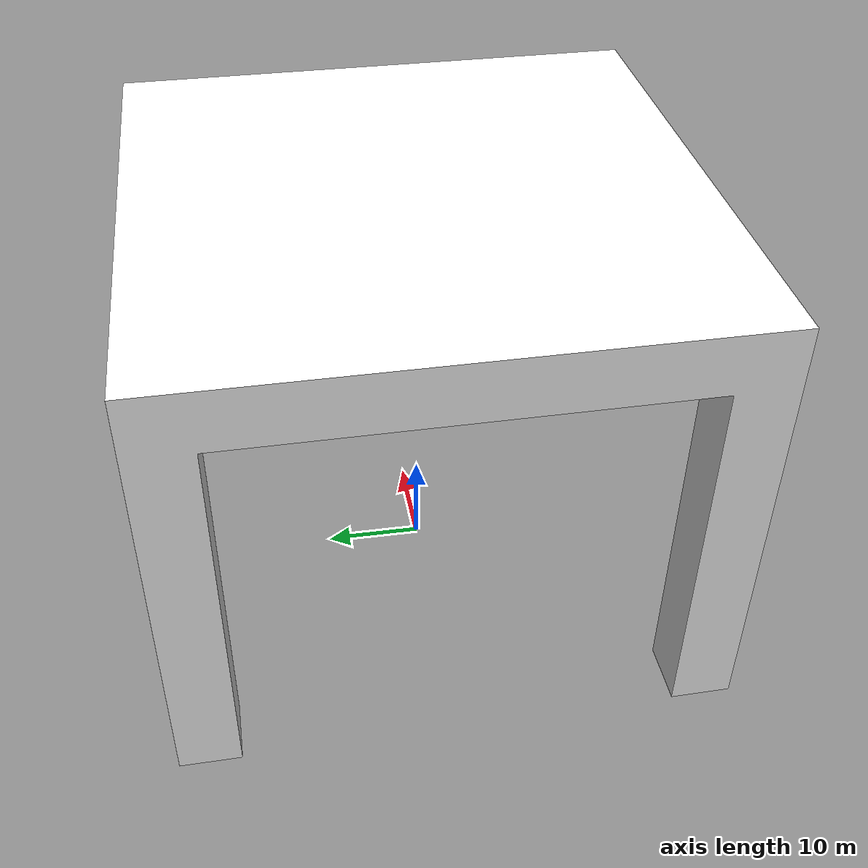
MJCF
<mujoco model="table">
  <default>
    <default class="visual">
      <geom group="2" type="mesh" contype="0" conaffinity="0"/>
    </default>
    <default class="collision">
      <geom group="3" type="mesh"/>
    </default>
  </default>
  <asset>
    <material name="color_16448250" specular="0.5" shininess="0.5" rgba="0.9803921568627451 0.9803921568627451 0.9803921568627451 1"/>
    <mesh file="table.obj"/>
  </asset>
  <worldbody>
    <body name="table">
      <geom material="color_16448250" mesh="table" class="visual"/>
      <geom mesh="table" class="collision"/>
    </body>
  </worldbody>
</mujoco>
